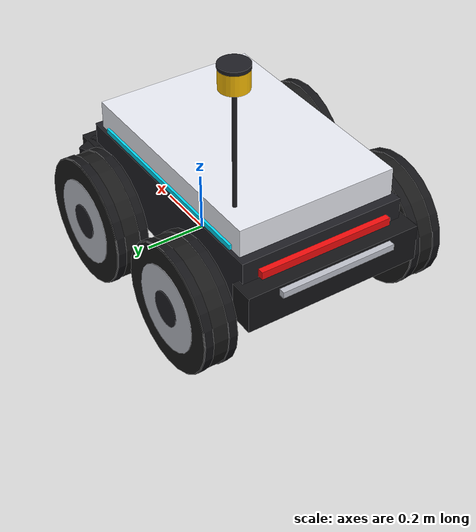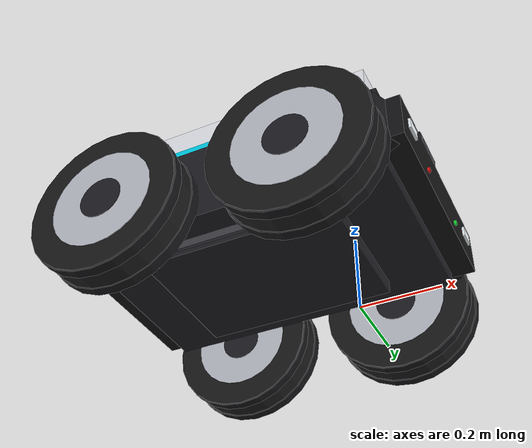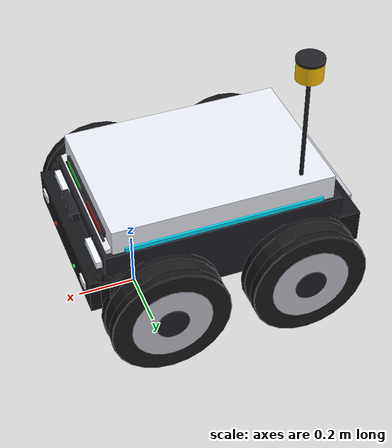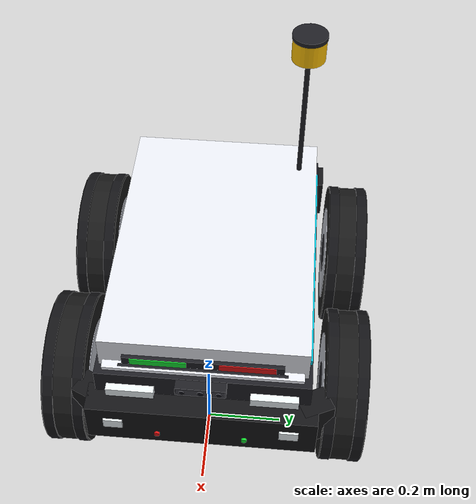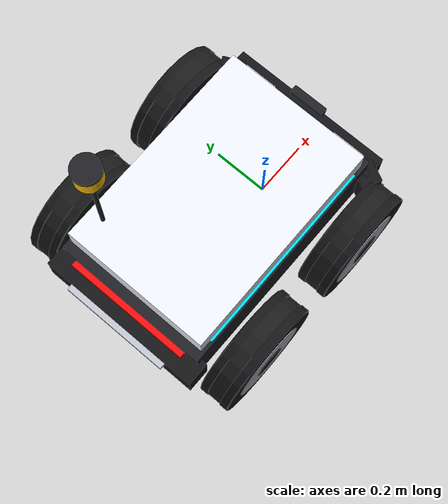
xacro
<?xml version="1.0"?>
<robot name="rdsim" xmlns:xacro="http://ros.org/wiki/xacro">

  <!-- Robot Dimensions & Kinematic Constants                         -->
  <xacro:property name="base_width" value="0.62"/>
  <xacro:property name="base_length" value="0.82"/>
  <xacro:property name="base_height" value="0.22"/>

  <xacro:property name="wheel_radius" value="0.20"/>
  <xacro:property name="wheel_width" value="0.11"/>
  <xacro:property name="wheel_ygap" value="0.05"/>
  <xacro:property name="wheel_zoff" value="0.10"/>
  <xacro:property name="wheel_xoff" value="0.24"/>

  <!-- Standard Materials for RViz / Visualization                     -->
  <material name="ChassisWhite">
    <color rgba="0.92 0.93 0.96 1.0"/>
  </material>
  <material name="TrimBlack">
    <color rgba="0.12 0.12 0.14 1.0"/>
  </material>
  <material name="BumperBlack">
    <color rgba="0.08 0.08 0.09 1.0"/>
  </material>
  <material name="DarkGrey">
    <color rgba="0.25 0.25 0.28 1.0"/>
  </material>
  <material name="TireRubber">
    <color rgba="0.10 0.10 0.10 1.0"/>
  </material>
  <material name="RimSilver">
    <color rgba="0.75 0.76 0.80 1.0"/>
  </material>
  <material name="EstopRed">
    <color rgba="0.90 0.08 0.08 1.0"/>
  </material>
  <material name="EstopYellow">
    <color rgba="0.95 0.82 0.05 1.0"/>
  </material>
  <material name="HeadlightLed">
    <color rgba="0.95 0.98 1.00 1.0"/>
  </material>
  <material name="TaillightLed">
    <color rgba="0.95 0.05 0.05 1.0"/>
  </material>
  <material name="AutonomousCyan">
    <color rgba="0.00 0.85 0.95 1.0"/>
  </material>
  <material name="StatusGreen">
    <color rgba="0.08 0.92 0.20 1.0"/>
  </material>
  <material name="AmberGlow">
    <color rgba="1.00 0.76 0.02 1.0"/>
  </material>
  <material name="GlassLens">
    <color rgba="0.05 0.05 0.08 1.0"/>
  </material>

  <!-- Inertial Macros                                                -->
  <xacro:macro name="box_inertia" params="m w h d">
    <inertial>
      <origin xyz="0 0 0" rpy="${pi/2} 0 ${pi/2}"/>
      <mass value="${m}"/>
      <inertia ixx="${(m/12) * (h*h + d*d)}" ixy="0.0" ixz="0.0"
               iyy="${(m/12) * (w*w + d*d)}" iyz="0.0"
               izz="${(m/12) * (w*w + h*h)}"/>
    </inertial>
  </xacro:macro>

  <xacro:macro name="cylinder_inertia" params="m r h">
    <inertial>
      <origin xyz="0 0 0" rpy="${pi/2} 0 0" />
      <mass value="${m}"/>
      <inertia ixx="${(m/12) * (3*r*r + h*h)}" ixy="0.0" ixz="0.0"
               iyy="${(m/12) * (3*r*r + h*h)}" iyz="0.0"
               izz="${(m/2) * (r*r)}"/>
    </inertial>
  </xacro:macro>

  <!-- Robot Footprint -->
  <link name="base_footprint"/>

  <joint name="base_joint" type="fixed">
    <parent link="base_footprint"/>
    <child link="base_link"/>
    <origin xyz="${-1 * wheel_xoff} 0.0 ${(wheel_radius+wheel_zoff)}" rpy="0 0 0"/>
  </joint>

  <!-- Main Structural Chassis Frame -->
  <link name="base_link">
    <!-- Visual: Lower structural foundation -->
    <visual>
      <origin xyz="0 0 0.0" rpy="0 0 0"/>
      <geometry>
        <box size="${base_length} ${base_width - 0.08} ${base_height}"/>
      </geometry>
      <material name="TrimBlack"/>
    </visual>

    <!-- Collision Geometry: Robust single bounding envelope for ODE physics -->
    <collision>
      <origin xyz="0 0 0.03" rpy="0 0 0"/>
      <geometry>
        <box size="${base_length} ${base_width - 0.08} ${base_height + 0.06}"/>
      </geometry>
    </collision>

    <!-- Realistic physical mass with low center-of-gravity for rollover stability -->
    <inertial>
      <origin xyz="0 0 -0.03" rpy="0 0 0"/>
      <mass value="22.0"/>
      <inertia ixx="0.65" ixy="0.0" ixz="0.0"
               iyy="1.30" iyz="0.0"
               izz="1.70"/>
    </inertial>
  </link>

  <!-- Enclosed Weather-Resistant Upper Chassis Shell                 -->
  <!-- Enclosed Weather-Resistant Upper Chassis Shell (Livery Styled)  -->
  <link name="chassis_shell_link">
    <!-- Main upper enclosure (Pearl White IP65 automotive body shell) -->
    <visual>
      <origin xyz="0 0 0.06" rpy="0 0 0"/>
      <geometry>
        <box size="0.76 0.52 0.18"/>
      </geometry>
      <material name="ChassisWhite"/>
    </visual>

    <!-- Aerodynamic front hood contour -->
    <visual>
      <origin xyz="0.28 0 0.04" rpy="0 0.22 0"/>
      <geometry>
        <box size="0.22 0.50 0.12"/>
      </geometry>
      <material name="ChassisWhite"/>
    </visual>

    <!-- Recessed Front RealSense Visor Mask (Gloss Black) -->
    <visual>
      <origin xyz="0.385 0 0.05" rpy="0 0 0"/>
      <geometry>
        <box size="0.02 0.42 0.055"/>
      </geometry>
      <material name="TrimBlack"/>
    </visual>

    <!-- Dual Horizontal Status LED Bar Above Visor (Red Left, Green Right) -->
    <!-- Left Status LED: Red Warning / Alert Indicator -->
    <visual>
      <origin xyz="0.388 0.11 0.095" rpy="0 0 0"/>
      <geometry>
        <box size="0.012 0.14 0.018"/>
      </geometry>
      <material name="EstopRed"/>
    </visual>
    <!-- Right Status LED: Green Operational / Delivery Indicator -->
    <visual>
      <origin xyz="0.388 -0.11 0.095" rpy="0 0 0"/>
      <geometry>
        <box size="0.012 0.14 0.018"/>
      </geometry>
      <material name="StatusGreen"/>
    </visual>
    <!-- Status LED Bezel Frame -->
    <visual>
      <origin xyz="0.386 0 0.095" rpy="0 0 0"/>
      <geometry>
        <box size="0.010 0.40 0.024"/>
      </geometry>
      <material name="TrimBlack"/>
    </visual>

    <!-- Front Hood Branding Plate: CHIHEB_BOT -->
    <visual>
      <origin xyz="0.392 0 -0.005" rpy="0 0 0"/>
      <geometry>
        <box size="0.006 0.36 0.050"/>
      </geometry>
      <material name="TrimBlack"/>
    </visual>
    <visual>
      <origin xyz="0.395 0 -0.005" rpy="0 0 0"/>
      <geometry>
        <box size="0.004 0.34 0.038"/>
      </geometry>
      <material name="ChassisWhite"/>
    </visual>
    <!-- Central Brand Name Inscription Bar -->
    <visual>
      <origin xyz="0.397 0 -0.005" rpy="0 0 0"/>
      <geometry>
        <box size="0.002 0.30 0.018"/>
      </geometry>
      <material name="TrimBlack"/>
    </visual>

    <!-- Cyan Illuminated Status Strips (Left & Right Waistlines) -->
    <visual>
      <origin xyz="0 0.262 0.07" rpy="0 0 0"/>
      <geometry>
        <box size="0.68 0.012 0.016"/>
      </geometry>
      <material name="AutonomousCyan"/>
    </visual>
    <visual>
      <origin xyz="0 -0.262 0.07" rpy="0 0 0"/>
      <geometry>
        <box size="0.68 0.012 0.016"/>
      </geometry>
      <material name="AutonomousCyan"/>
    </visual>

    <!-- Tall Safety Beacon Mast & Amber Flashing Dome (As in Reference Picture) -->
    <!-- Vertical Black Antenna Mast -->
    <visual>
      <origin xyz="-0.28 0.21 0.28" rpy="0 0 0"/>
      <geometry>
        <cylinder radius="0.007" length="0.52"/>
      </geometry>
      <material name="TrimBlack"/>
    </visual>
    <!-- Mast Collar Base Mount -->
    <visual>
      <origin xyz="-0.28 0.21 0.04" rpy="0 0 0"/>
      <geometry>
        <cylinder radius="0.020" length="0.040"/>
      </geometry>
      <material name="DarkGrey"/>
    </visual>
    <!-- Amber Glowing Flashing Beacon Lamp on Top of Mast -->
    <visual>
      <origin xyz="-0.28 0.21 0.56" rpy="0 0 0"/>
      <geometry>
        <cylinder radius="0.044" length="0.065"/>
      </geometry>
      <material name="AmberGlow"/>
    </visual>
    <!-- Beacon Crown Cap -->
    <visual>
      <origin xyz="-0.28 0.21 0.595" rpy="0 0 0"/>
      <geometry>
        <cylinder radius="0.046" length="0.012"/>
      </geometry>
      <material name="TrimBlack"/>
    </visual>

    <!-- Side protective rocker panel trims (Matte Black) -->
    <visual>
      <origin xyz="0 0.25 -0.04" rpy="0 0 0"/>
      <geometry>
        <box size="0.74 0.03 0.08"/>
      </geometry>
      <material name="TrimBlack"/>
    </visual>
    <visual>
      <origin xyz="0 -0.25 -0.04" rpy="0 0 0"/>
      <geometry>
        <box size="0.74 0.03 0.08"/>
      </geometry>
      <material name="TrimBlack"/>
    </visual>

    <inertial>
      <mass value="0.05"/>
      <inertia ixx="0.001" ixy="0" ixz="0" iyy="0.001" iyz="0" izz="0.001"/>
    </inertial>
  </link>

  <joint name="chassis_shell_joint" type="fixed">
    <parent link="base_link"/>
    <child link="chassis_shell_link"/>
    <origin xyz="0 0 0.05" rpy="0 0 0"/>
  </joint>

  <!-- Hollow Cargo Bay Cavity (Parcel Placement Storage)             -->
  <link name="cargo_bay_link">
    <!-- Interior recessed cargo compartment tub -->
    <visual>
      <origin xyz="0 0 0" rpy="0 0 0"/>
      <geometry>
        <box size="0.40 0.40 0.12"/>
      </geometry>
      <material name="TrimBlack"/>
    </visual>
    <inertial>
      <mass value="0.05"/>
      <inertia ixx="0.001" ixy="0" ixz="0" iyy="0.001" iyz="0" izz="0.001"/>
    </inertial>
  </link>

  <joint name="cargo_bay_joint" type="fixed">
    <parent link="base_link"/>
    <child link="cargo_bay_link"/>
    <origin xyz="-0.04 0 0.07" rpy="0 0 0"/>
  </joint>

  <!-- Vertical Cargo Lift Mechanism (Lead Screw / Linear Actuator)    -->
  <link name="cargo_platform_link">
    <!-- Anodized aircraft-grade aluminum elevator carriage plate -->
    <visual>
      <origin xyz="0 0 0" rpy="0 0 0"/>
      <geometry>
        <box size="0.36 0.36 0.015"/>
      </geometry>
      <material name="RimSilver"/>
    </visual>

    <!-- High-grip textured rubber retention mat -->
    <visual>
      <origin xyz="0 0 0.009" rpy="0 0 0"/>
      <geometry>
        <box size="0.34 0.34 0.003"/>
      </geometry>
      <material name="TrimBlack"/>
    </visual>

    <!-- Cargo retention guide rail lip (front) -->
    <visual>
      <origin xyz="0.17 0 0.015" rpy="0 0 0"/>
      <geometry>
        <box size="0.01 0.34 0.02"/>
      </geometry>
      <material name="AutonomousCyan"/>
    </visual>

    <!-- Cargo retention guide rail lip (rear) -->
    <visual>
      <origin xyz="-0.17 0 0.015" rpy="0 0 0"/>
      <geometry>
        <box size="0.01 0.34 0.02"/>
      </geometry>
      <material name="AutonomousCyan"/>
    </visual>

    <collision>
      <origin xyz="0 0 0" rpy="0 0 0"/>
      <geometry>
        <box size="0.36 0.36 0.015"/>
      </geometry>
    </collision>

    <inertial>
      <origin xyz="0 0 0" rpy="0 0 0"/>
      <mass value="1.50"/>
      <inertia ixx="0.016" ixy="0" ixz="0" iyy="0.016" iyz="0" izz="0.032"/>
    </inertial>
  </link>

  <!-- Prismatic Vertical Lift: 0.0m = Stowed (Deep Bay), 0.12m = Raised (Threshold Handover) -->
  <joint name="cargo_lift_joint" type="prismatic">
    <parent link="base_link"/>
    <child link="cargo_platform_link"/>
    <origin xyz="-0.04 0 0.02" rpy="0 0 0"/>
    <axis xyz="0 0 1"/>
    <limit lower="0.0" upper="0.12" effort="300.0" velocity="0.05"/>
    <dynamics damping="10.0" friction="1.0"/>
  </joint>

  <!-- Motorized 60-Degree Cargo Delivery Hatch                       -->
  <link name="cargo_hatch_link">
    <!-- Motorized delivery hatch lid panel (pivots from rear hinge) -->
    <visual>
      <origin xyz="0.22 0 0.012" rpy="0 0 0"/>
      <geometry>
        <box size="0.44 0.44 0.025"/>
      </geometry>
      <material name="TrimBlack"/>
    </visual>

    <!-- Perimeter weatherproof silicone seal gasket -->
    <visual>
      <origin xyz="0.22 0 -0.002" rpy="0 0 0"/>
      <geometry>
        <box size="0.46 0.46 0.008"/>
      </geometry>
      <material name="DarkGrey"/>
    </visual>

    <!-- Customer interface panel / NFC-RFID badge unlock pad -->
    <visual>
      <origin xyz="0.40 0 0.026" rpy="0 0 0"/>
      <geometry>
        <box size="0.06 0.16 0.006"/>
      </geometry>
      <material name="AutonomousCyan"/>
    </visual>

    <!-- Recessed hatch latch handle -->
    <visual>
      <origin xyz="0.05 0 0.026" rpy="0 0 0"/>
      <geometry>
        <box size="0.03 0.12 0.006"/>
      </geometry>
      <material name="RimSilver"/>
    </visual>

    <collision>
      <origin xyz="0.22 0 0.012" rpy="0 0 0"/>
      <geometry>
        <box size="0.44 0.44 0.025"/>
      </geometry>
    </collision>

    <inertial>
      <origin xyz="0.22 0 0.012" rpy="0 0 0"/>
      <mass value="0.50"/>
      <inertia ixx="0.008" ixy="0" ixz="0" iyy="0.008" iyz="0" izz="0.016"/>
    </inertial>
  </link>

  <!-- Revolute Hinge: 0.0 rad = Closed, 1.05 rad (~60 deg) = Open -->
  <joint name="cargo_hatch_joint" type="revolute">
    <parent link="base_link"/>
    <child link="cargo_hatch_link"/>
    <origin xyz="-0.26 0 0.165" rpy="0 0 0"/>
    <axis xyz="0 -1 0"/>
    <limit lower="0.0" upper="1.05" effort="50.0" velocity="1.5"/>
    <dynamics damping="0.5" friction="0.05"/>
  </joint>

  <!-- Battery and Electronics Bay                                    -->
  <link name="battery_bay_link">
    <!-- Lower sealed battery tray (LiFePO4 modular pack) -->
    <visual>
      <origin xyz="0 0 0" rpy="0 0 0"/>
      <geometry>
        <box size="0.52 0.38 0.07"/>
      </geometry>
      <material name="TrimBlack"/>
    </visual>

    <!-- Left side cooling louvers / ventilation grill -->
    <visual>
      <origin xyz="0 0.195 0" rpy="0 0 0"/>
      <geometry>
        <box size="0.32 0.01 0.045"/>
      </geometry>
      <material name="DarkGrey"/>
    </visual>

    <!-- Right side cooling louvers / ventilation grill -->
    <visual>
      <origin xyz="0 -0.195 0" rpy="0 0 0"/>
      <geometry>
        <box size="0.32 0.01 0.045"/>
      </geometry>
      <material name="DarkGrey"/>
    </visual>

    <inertial>
      <mass value="0.05"/>
      <inertia ixx="0.001" ixy="0" ixz="0" iyy="0.001" iyz="0" izz="0.001"/>
    </inertial>
  </link>

  <joint name="battery_bay_joint" type="fixed">
    <parent link="base_link"/>
    <child link="battery_bay_link"/>
    <origin xyz="0 0 -0.11" rpy="0 0 0"/>
  </joint>

  <!-- Protective Front & Rear Bumpers                                -->
  <link name="bumper_front_link">
    <visual>
      <origin xyz="0 0 0" rpy="0 0 0"/>
      <geometry>
        <box size="0.08 0.58 0.12"/>
      </geometry>
      <material name="BumperBlack"/>
    </visual>
    <!-- Left corner deflector wing -->
    <visual>
      <origin xyz="-0.03 0.28 0" rpy="0 0 0.45"/>
      <geometry>
        <box size="0.07 0.08 0.12"/>
      </geometry>
      <material name="BumperBlack"/>
    </visual>
    <!-- Right corner deflector wing -->
    <visual>
      <origin xyz="-0.03 -0.28 0" rpy="0 0 -0.45"/>
      <geometry>
        <box size="0.07 0.08 0.12"/>
      </geometry>
      <material name="BumperBlack"/>
    </visual>

    <!-- Lower Driving Headlights (Bright White LEDs) -->
    <visual>
      <origin xyz="0.042 0.22 0.01" rpy="0 0 0"/>
      <geometry>
        <box size="0.008 0.048 0.028"/>
      </geometry>
      <material name="HeadlightLed"/>
    </visual>
    <visual>
      <origin xyz="0.042 -0.22 0.01" rpy="0 0 0"/>
      <geometry>
        <box size="0.008 0.048 0.028"/>
      </geometry>
      <material name="HeadlightLed"/>
    </visual>

    <!-- Mini Front Status Marker Dots (Green & Red) -->
    <visual>
      <origin xyz="0.043 0.11 -0.025" rpy="0 ${pi/2} 0"/>
      <geometry>
        <cylinder radius="0.007" length="0.006"/>
      </geometry>
      <material name="StatusGreen"/>
    </visual>
    <visual>
      <origin xyz="0.043 -0.11 -0.025" rpy="0 ${pi/2} 0"/>
      <geometry>
        <cylinder radius="0.007" length="0.006"/>
      </geometry>
      <material name="EstopRed"/>
    </visual>

    <collision>
      <origin xyz="0 0 0" rpy="0 0 0"/>
      <geometry>
        <box size="0.08 0.58 0.12"/>
      </geometry>
    </collision>

    <inertial>
      <mass value="0.2"/>
      <inertia ixx="0.002" ixy="0" ixz="0" iyy="0.002" iyz="0" izz="0.002"/>
    </inertial>
  </link>

  <joint name="bumper_front_joint" type="fixed">
    <parent link="base_link"/>
    <child link="bumper_front_link"/>
    <origin xyz="0.43 0 -0.02" rpy="0 0 0"/>
  </joint>

  <link name="bumper_rear_link">
    <visual>
      <origin xyz="0 0 0" rpy="0 0 0"/>
      <geometry>
        <box size="0.08 0.58 0.12"/>
      </geometry>
      <material name="BumperBlack"/>
    </visual>
    <visual>
      <origin xyz="-0.03 0 0.04" rpy="0 0 0"/>
      <geometry>
        <box size="0.06 0.38 0.02"/>
      </geometry>
      <material name="RimSilver"/>
    </visual>

    <collision>
      <origin xyz="0 0 0" rpy="0 0 0"/>
      <geometry>
        <box size="0.08 0.58 0.12"/>
      </geometry>
    </collision>

    <inertial>
      <mass value="0.2"/>
      <inertia ixx="0.002" ixy="0" ixz="0" iyy="0.002" iyz="0" izz="0.002"/>
    </inertial>
  </link>

  <joint name="bumper_rear_joint" type="fixed">
    <parent link="base_link"/>
    <child link="bumper_rear_link"/>
    <origin xyz="-0.43 0 -0.02" rpy="0 0 0"/>
  </joint>

  <!-- Emergency Stop (E-Stop) Button                                 -->
  <link name="estop_base_link">
    <!-- Safety yellow bezel base ring -->
    <visual>
      <origin xyz="0 0 0.006" rpy="0 0 0"/>
      <geometry>
        <cylinder radius="0.030" length="0.012"/>
      </geometry>
      <material name="EstopYellow"/>
    </visual>

    <!-- Crimson red mushroom push button head -->
    <visual>
      <origin xyz="0 0 0.020" rpy="0 0 0"/>
      <geometry>
        <cylinder radius="0.024" length="0.020"/>
      </geometry>
      <material name="EstopRed"/>
    </visual>

    <inertial>
      <mass value="0.02"/>
      <inertia ixx="0.0001" ixy="0" ixz="0" iyy="0.0001" iyz="0" izz="0.0001"/>
    </inertial>
  </link>

  <joint name="estop_joint" type="fixed">
    <parent link="base_link"/>
    <child link="estop_base_link"/>
    <origin xyz="-0.30 0.18 0.165" rpy="0 0 0"/>
  </joint>

  <!-- Status & Safety Lighting                                       -->
  <!-- Front Headlights (High-visibility driving lights) -->
  <link name="headlights_link">
    <visual>
      <origin xyz="0 0.18 0" rpy="0 0 0"/>
      <geometry>
        <box size="0.02 0.12 0.025"/>
      </geometry>
      <material name="HeadlightLed"/>
    </visual>
    <visual>
      <origin xyz="0 -0.18 0" rpy="0 0 0"/>
      <geometry>
        <box size="0.02 0.12 0.025"/>
      </geometry>
      <material name="HeadlightLed"/>
    </visual>

    <inertial>
      <mass value="0.01"/>
      <inertia ixx="0.00001" ixy="0" ixz="0" iyy="0.00001" iyz="0" izz="0.00001"/>
    </inertial>
  </link>

  <joint name="headlights_joint" type="fixed">
    <parent link="base_link"/>
    <child link="headlights_link"/>
    <origin xyz="0.42 0 0.06" rpy="0 0 0"/>
  </joint>

  <!-- Rear Taillights / Brake Light Strip -->
  <link name="taillights_link">
    <visual>
      <origin xyz="0 0 0" rpy="0 0 0"/>
      <geometry>
        <box size="0.02 0.44 0.025"/>
      </geometry>
      <material name="TaillightLed"/>
    </visual>

    <inertial>
      <mass value="0.01"/>
      <inertia ixx="0.00001" ixy="0" ixz="0" iyy="0.00001" iyz="0" izz="0.00001"/>
    </inertial>
  </link>

  <joint name="taillights_joint" type="fixed">
    <parent link="base_link"/>
    <child link="taillights_link"/>
    <origin xyz="-0.42 0 0.06" rpy="0 0 0"/>
  </joint>

  <!-- Autonomous Operational State Indicator Beacons (Cyan Rings) -->
  <link name="beacon_left_link">
    <visual>
      <origin xyz="0 0 0" rpy="0 0 0"/>
      <geometry>
        <cylinder radius="0.022" length="0.028"/>
      </geometry>
      <material name="AutonomousCyan"/>
    </visual>
    <inertial>
      <mass value="0.01"/>
      <inertia ixx="0.00001" ixy="0" ixz="0" iyy="0.00001" iyz="0" izz="0.00001"/>
    </inertial>
  </link>

  <joint name="beacon_left_joint" type="fixed">
    <parent link="base_link"/>
    <child link="beacon_left_link"/>
    <origin xyz="0.22 0.22 0.17" rpy="0 0 0"/>
  </joint>

  <link name="beacon_right_link">
    <visual>
      <origin xyz="0 0 0" rpy="0 0 0"/>
      <geometry>
        <cylinder radius="0.022" length="0.028"/>
      </geometry>
      <material name="AutonomousCyan"/>
    </visual>
    <inertial>
      <mass value="0.01"/>
      <inertia ixx="0.00001" ixy="0" ixz="0" iyy="0.00001" iyz="0" izz="0.00001"/>
    </inertial>
  </link>

  <joint name="beacon_right_joint" type="fixed">
    <parent link="base_link"/>
    <child link="beacon_right_link"/>
    <origin xyz="0.22 -0.22 0.17" rpy="0 0 0"/>
  </joint>

  <!-- Four Visibly Realistic Wheels Macro                            -->
  <xacro:macro name="delivery_wheel" params="name x_pos y_pos">
    <link name="${name}_link">
      <!-- Outer rugged rubber tread -->
      <visual>
        <origin xyz="0 0 0" rpy="${pi/2} 0 0"/>
        <geometry>
          <cylinder radius="${wheel_radius}" length="${wheel_width}"/>
        </geometry>
        <material name="TireRubber"/>
      </visual>

      <!-- Rugged Off-Road Shoulder Tread Ribs -->
      <visual>
        <origin xyz="0 ${wheel_width * 0.35} 0" rpy="${pi/2} 0 0"/>
        <geometry>
          <cylinder radius="${wheel_radius * 1.015}" length="${wheel_width * 0.25}"/>
        </geometry>
        <material name="BumperBlack"/>
      </visual>
      <visual>
        <origin xyz="0 ${-wheel_width * 0.35} 0" rpy="${pi/2} 0 0"/>
        <geometry>
          <cylinder radius="${wheel_radius * 1.015}" length="${wheel_width * 0.25}"/>
        </geometry>
        <material name="BumperBlack"/>
      </visual>

      <!-- Inner alloy rim / metallic wheel spokes -->
      <visual>
        <origin xyz="0 0 0" rpy="${pi/2} 0 0"/>
        <geometry>
          <cylinder radius="${wheel_radius * 0.68}" length="${wheel_width + 0.004}"/>
        </geometry>
        <material name="RimSilver"/>
      </visual>

      <!-- Central hubcap and lug pattern -->
      <visual>
        <origin xyz="0 0 0" rpy="${pi/2} 0 0"/>
        <geometry>
          <cylinder radius="${wheel_radius * 0.28}" length="${wheel_width + 0.008}"/>
        </geometry>
        <material name="TrimBlack"/>
      </visual>

      <!-- Accurate physical collision cylinder -->
      <collision>
        <origin xyz="0 0 0" rpy="${pi/2} 0 0"/>
        <geometry>
          <cylinder radius="${wheel_radius}" length="${wheel_width}"/>
        </geometry>
      </collision>

      <!-- Wheel mass and polar inertia -->
      <inertial>
        <origin xyz="0 0 0" rpy="${pi/2} 0 0"/>
        <mass value="1.2"/>
        <inertia ixx="0.0126" ixy="0" ixz="0"
                 iyy="${(1.2/2) * (wheel_radius*wheel_radius)}" iyz="0"
                 izz="0.0126"/>
      </inertial>
    </link>

    <joint name="${name}_joint" type="continuous">
      <parent link="base_link"/>
      <child link="${name}_link"/>
      <origin xyz="${x_pos} ${y_pos} ${-wheel_zoff}" rpy="0 0 0"/>
      <axis xyz="0 1 0"/>
    </joint>
  </xacro:macro>

  <!-- Front Active Drive Wheels -->
  <xacro:delivery_wheel name="wheel_left"  x_pos="${wheel_xoff}" y_pos="${1*(base_width/2+wheel_ygap)}"/>
  <xacro:delivery_wheel name="wheel_right" x_pos="${wheel_xoff}" y_pos="${-1*(base_width/2+wheel_ygap)}"/>

  <!-- Rear Continuous Rolling Wheels (Passive low-friction for smooth differential turning) -->
  <xacro:delivery_wheel name="wheel_rear_left"  x_pos="${-wheel_xoff}" y_pos="${1*(base_width/2+wheel_ygap)}"/>
  <xacro:delivery_wheel name="wheel_rear_right" x_pos="${-wheel_xoff}" y_pos="${-1*(base_width/2+wheel_ygap)}"/>

  <!-- Sensors: RGB-D Camera, IMU, GPS                                -->
  <!-- Front RGB-D Camera (Stereo IR + RGB Lens Assembly) -->
  <link name="camera_link">
    <!-- Camera Sensor Enclosure (RealSense / OAK-D form factor) -->
    <visual>
      <origin xyz="0 0 0" rpy="0 0 0"/>
      <geometry>
        <box size="0.025 0.125 0.028"/>
      </geometry>
      <material name="TrimBlack"/>
    </visual>

    <!-- Front Optical Bezel Faceplate -->
    <visual>
      <origin xyz="0.013 0 0" rpy="0 0 0"/>
      <geometry>
        <box size="0.002 0.120 0.024"/>
      </geometry>
      <material name="DarkGrey"/>
    </visual>

    <!-- Left IR Projector Aperture -->
    <visual>
      <origin xyz="0.014 0.045 0" rpy="0 ${pi/2} 0"/>
      <geometry>
        <cylinder radius="0.007" length="0.003"/>
      </geometry>
      <material name="GlassLens"/>
    </visual>

    <!-- Center RGB Camera Lens -->
    <visual>
      <origin xyz="0.014 0 0" rpy="0 ${pi/2} 0"/>
      <geometry>
        <cylinder radius="0.008" length="0.003"/>
      </geometry>
      <material name="GlassLens"/>
    </visual>

    <!-- Right IR Emitter Aperture -->
    <visual>
      <origin xyz="0.014 -0.045 0" rpy="0 ${pi/2} 0"/>
      <geometry>
        <cylinder radius="0.007" length="0.003"/>
      </geometry>
      <material name="GlassLens"/>
    </visual>

    <collision>
      <origin xyz="0 0 0" rpy="0 0 0"/>
      <geometry>
        <box size="0.025 0.125 0.028"/>
      </geometry>
    </collision>

    <inertial>
      <origin xyz="0 0 0" rpy="0 0 0"/>
      <mass value="0.035"/>
      <inertia ixx="0.0001" ixy="0" ixz="0" iyy="0.0001" iyz="0" izz="0.0001" />
    </inertial>
  </link>

  <!-- Camera joint origin calibrated at 0.42m above ground level (mounted on front hood fascia) -->
  <joint name="camera_joint" type="fixed">
    <parent link="base_link"/>
    <child link="camera_link"/>
    <origin xyz="0.44 0 0.12" rpy="0 0.05 0"/>
  </joint>

  <!-- GPS Link (isolated to evaluation / ground truth) -->
  <link name="gps_link">
    <inertial>
      <mass value="0.01"/>
      <inertia ixx="0.00001" ixy="0" ixz="0" iyy="0.00001" iyz="0" izz="0.00001"/>
    </inertial>
  </link>

  <joint name="gps_joint" type="fixed">
    <parent link="base_link"/>
    <child link="gps_link"/>
    <origin xyz="0 0 0.12" rpy="0 0 0"/>
  </joint>

  <!-- IMU Link -->
  <link name="imu_link">
    <inertial>
      <mass value="0.01"/>
      <inertia ixx="0.00001" ixy="0" ixz="0" iyy="0.00001" iyz="0" izz="0.00001"/>
    </inertial>
  </link>

  <joint name="imu_joint" type="fixed">
    <parent link="base_link"/>
    <child link="imu_link"/>
    <origin xyz="0 0 0.05" rpy="0 0 0"/>
  </joint>

  <!-- Gazebo Plugins and Physical Surface Properties -->
  <xacro:include filename="$(find rdsim_description)/urdf/rdsim.camera_only.gazebo.xacro" />

</robot>
